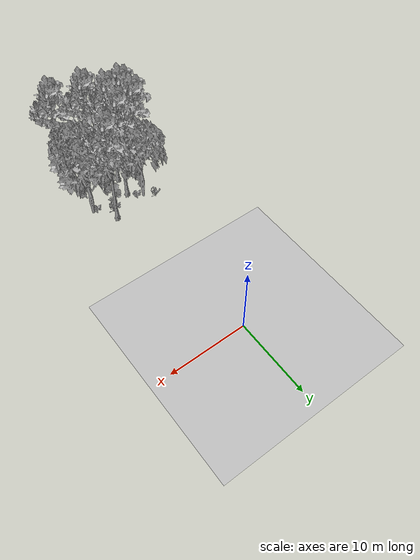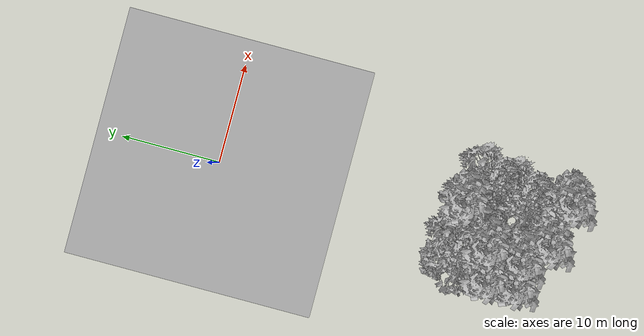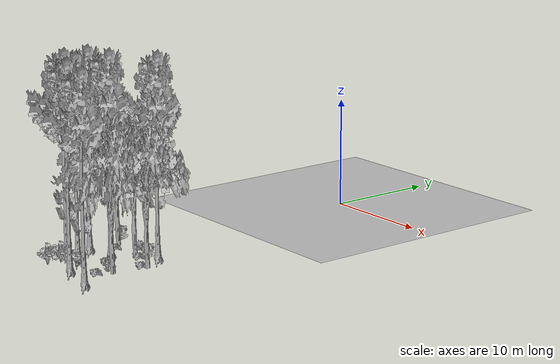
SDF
<sdf version="1.7">
 <world name="default">
  <model name="ground_plane">
   <static>1</static>
   <link name="link">
    <collision name="collision">
     <pose>-50 0 0 0 -0 0</pose>
     <geometry><plane><normal>0 0 1</normal><size>80 80</size></plane></geometry>
     <surface><contact><ode><min_depth>0.01</min_depth><max_vel>0</max_vel></ode></contact></surface>
    </collision>
    <visual name="grass">
     <cast_shadows>0</cast_shadows>
     <geometry>
      <mesh>
       <scale>0.46714285714285714 0.46714285714285714 0.1</scale>
       <uri>file://grass_plane/meshes/grass_plane.dae</uri>
      </mesh>
     </geometry>
    </visual>
   </link>
  </model>
  <model name="Tree 20">
   <static>1</static>
   <pose>2.6620295948769908 -22.221064124453882 0 1.57079 -0 0</pose>
   <link name="link">
    <collision name="collision">
     <geometry><mesh><scale>3.5 5 3.5</scale><uri>model://tree_9/meshes/tree_9.obj</uri></mesh></geometry>
    </collision>
    <visual name="visual">
     <geometry><mesh><scale>3.5 5 3.5</scale><uri>model://tree_9/meshes/tree_9.obj</uri></mesh></geometry>
    </visual>
   </link>
  </model>
  <model name="Tree 36">
   <static>1</static>
   <pose>4.64731560089762 -24.640429247862706 0 1.57079 -0 0</pose>
   <link name="link">
    <collision name="collision">
     <geometry><mesh><scale>3.5 5 3.5</scale><uri>model://tree_2/meshes/tree_2.obj</uri></mesh></geometry>
    </collision>
    <visual name="visual">
     <geometry><mesh><scale>3.5 5 3.5</scale><uri>model://tree_2/meshes/tree_2.obj</uri></mesh></geometry>
    </visual>
   </link>
  </model>
  <model name="Tree 73">
   <static>1</static>
   <pose>1.7062243221032745 -23.93220791918548 0 1.57079 -0 0</pose>
   <link name="link">
    <collision name="collision">
     <geometry><mesh><scale>3.5 5 3.5</scale><uri>model://tree_2/meshes/tree_2.obj</uri></mesh></geometry>
    </collision>
    <visual name="visual">
     <geometry><mesh><scale>3.5 5 3.5</scale><uri>model://tree_2/meshes/tree_2.obj</uri></mesh></geometry>
    </visual>
   </link>
  </model>
  <model name="Tree 190">
   <static>1</static>
   <pose>-3.0439718342376523 -25.429002359164386 0 1.57079 -0 0</pose>
   <link name="link">
    <collision name="collision">
     <geometry><mesh><scale>3.5 5 3.5</scale><uri>model://tree_9/meshes/tree_9.obj</uri></mesh></geometry>
    </collision>
    <visual name="visual">
     <geometry><mesh><scale>3.5 5 3.5</scale><uri>model://tree_9/meshes/tree_9.obj</uri></mesh></geometry>
    </visual>
   </link>
  </model>
  <model name="Tree 215">
   <static>1</static>
   <pose>1.0433557126138453 -29.790601047620875 0 1.57079 -0 0</pose>
   <link name="link">
    <collision name="collision">
     <geometry><mesh><scale>3.5 5 3.5</scale><uri>model://tree_9/meshes/tree_9.obj</uri></mesh></geometry>
    </collision>
    <visual name="visual">
     <geometry><mesh><scale>3.5 5 3.5</scale><uri>model://tree_9/meshes/tree_9.obj</uri></mesh></geometry>
    </visual>
   </link>
  </model>
  <model name="Tree 273">
   <static>1</static>
   <pose>-0.9732011836429706 -27.818195737126096 0 1.57079 -0 0</pose>
   <link name="link">
    <collision name="collision">
     <geometry><mesh><scale>3.5 5 3.5</scale><uri>model://tree_9/meshes/tree_9.obj</uri></mesh></geometry>
    </collision>
    <visual name="visual">
     <geometry><mesh><scale>3.5 5 3.5</scale><uri>model://tree_9/meshes/tree_9.obj</uri></mesh></geometry>
    </visual>
   </link>
  </model>
  <model name="Tree 447">
   <static>1</static>
   <pose>-2.1076141323567086 -23.21496573805378 0 1.57079 -0 0</pose>
   <link name="link">
    <collision name="collision">
     <geometry><mesh><scale>3.5 5 3.5</scale><uri>model://tree_2/meshes/tree_2.obj</uri></mesh></geometry>
    </collision>
    <visual name="visual">
     <geometry><mesh><scale>3.5 5 3.5</scale><uri>model://tree_2/meshes/tree_2.obj</uri></mesh></geometry>
    </visual>
   </link>
  </model>
  <model name="Tree 508">
   <static>1</static>
   <pose>-2.9206897326764363 -27.762084159199745 0 1.57079 -0 0</pose>
   <link name="link">
    <collision name="collision">
     <geometry><mesh><scale>3.5 5 3.5</scale><uri>model://tree_9/meshes/tree_9.obj</uri></mesh></geometry>
    </collision>
    <visual name="visual">
     <geometry><mesh><scale>3.5 5 3.5</scale><uri>model://tree_9/meshes/tree_9.obj</uri></mesh></geometry>
    </visual>
   </link>
  </model>
  <model name="Tree 554">
   <static>1</static>
   <pose>4.800050625045515 -30.676823136531794 0 1.57079 -0 0</pose>
   <link name="link">
    <collision name="collision">
     <geometry><mesh><scale>3.5 5 3.5</scale><uri>model://tree_9/meshes/tree_9.obj</uri></mesh></geometry>
    </collision>
    <visual name="visual">
     <geometry><mesh><scale>3.5 5 3.5</scale><uri>model://tree_9/meshes/tree_9.obj</uri></mesh></geometry>
    </visual>
   </link>
  </model>
  <model name="Tree 621">
   <static>1</static>
   <pose>4.151955149675089 -27.67862545013771 0 1.57079 -0 0</pose>
   <link name="link">
    <collision name="collision">
     <geometry><mesh><scale>3.5 5 3.5</scale><uri>model://tree_2/meshes/tree_2.obj</uri></mesh></geometry>
    </collision>
    <visual name="visual">
     <geometry><mesh><scale>3.5 5 3.5</scale><uri>model://tree_2/meshes/tree_2.obj</uri></mesh></geometry>
    </visual>
   </link>
  </model>
  <model name="Tree 624">
   <static>1</static>
   <pose>-0.5266809448080991 -24.874921229129523 0 1.57079 -0 0</pose>
   <link name="link">
    <collision name="collision">
     <geometry><mesh><scale>3.5 5 3.5</scale><uri>model://tree_9/meshes/tree_9.obj</uri></mesh></geometry>
    </collision>
    <visual name="visual">
     <geometry><mesh><scale>3.5 5 3.5</scale><uri>model://tree_9/meshes/tree_9.obj</uri></mesh></geometry>
    </visual>
   </link>
  </model>
  <model name="Bush 78">
   <static>1</static>
   <pose>2.3178479126604614 -23.51369277075296 0 1.57079 -0 0</pose>
   <link name="link">
    <collision name="collision">
     <geometry><mesh><scale>2 2 2</scale><uri>model://bush_5/meshes/bush_5.obj</uri></mesh></geometry>
     <surface><contact><collide_without_contact>false</collide_without_contact></contact></surface>
    </collision>
    <visual name="visual">
     <geometry><mesh><scale>2 2 2</scale><uri>model://bush_5/meshes/bush_5.obj</uri></mesh></geometry>
    </visual>
   </link>
  </model>
  <model name="Bush 280">
   <static>1</static>
   <pose>-0.8940676986772829 -29.534201266304294 0 1.57079 -0 0</pose>
   <link name="link">
    <collision name="collision">
     <geometry><mesh><scale>2 2 2</scale><uri>model://bush_1/meshes/bush_1.obj</uri></mesh></geometry>
     <surface><contact><collide_without_contact>false</collide_without_contact></contact></surface>
    </collision>
    <visual name="visual">
     <geometry><mesh><scale>2 2 2</scale><uri>model://bush_1/meshes/bush_1.obj</uri></mesh></geometry>
    </visual>
   </link>
  </model>
  <model name="Bush 328">
   <static>1</static>
   <pose>4.03919002325037 -24.854481996539242 0 1.57079 -0 0</pose>
   <link name="link">
    <collision name="collision">
     <geometry><mesh><scale>2 2 2</scale><uri>model://bush_2/meshes/bush_2.obj</uri></mesh></geometry>
     <surface><contact><collide_without_contact>false</collide_without_contact></contact></surface>
    </collision>
    <visual name="visual">
     <geometry><mesh><scale>2 2 2</scale><uri>model://bush_2/meshes/bush_2.obj</uri></mesh></geometry>
    </visual>
   </link>
  </model>
  <model name="Bush 372">
   <static>1</static>
   <pose>1.4267573242228124 -26.613172520094608 0 1.57079 -0 0</pose>
   <link name="link">
    <collision name="collision">
     <geometry><mesh><scale>2 2 2</scale><uri>model://bush_2/meshes/bush_2.obj</uri></mesh></geometry>
     <surface><contact><collide_without_contact>false</collide_without_contact></contact></surface>
    </collision>
    <visual name="visual">
     <geometry><mesh><scale>2 2 2</scale><uri>model://bush_2/meshes/bush_2.obj</uri></mesh></geometry>
    </visual>
   </link>
  </model>
  <model name="Bush 394">
   <static>1</static>
   <pose>3.3402742520728452 -28.772086990327395 0 1.57079 -0 0</pose>
   <link name="link">
    <collision name="collision">
     <geometry><mesh><scale>2 2 2</scale><uri>model://bush_2/meshes/bush_2.obj</uri></mesh></geometry>
     <surface><contact><collide_without_contact>false</collide_without_contact></contact></surface>
    </collision>
    <visual name="visual">
     <geometry><mesh><scale>2 2 2</scale><uri>model://bush_2/meshes/bush_2.obj</uri></mesh></geometry>
    </visual>
   </link>
  </model>
  <model name="Bush 398">
   <static>1</static>
   <pose>1.8280597778139338 -23.705774019040025 0 1.57079 -0 0</pose>
   <link name="link">
    <collision name="collision">
     <geometry><mesh><scale>2 2 2</scale><uri>model://bush_2/meshes/bush_2.obj</uri></mesh></geometry>
     <surface><contact><collide_without_contact>false</collide_without_contact></contact></surface>
    </collision>
    <visual name="visual">
     <geometry><mesh><scale>2 2 2</scale><uri>model://bush_2/meshes/bush_2.obj</uri></mesh></geometry>
    </visual>
   </link>
  </model>
  <model name="Bush 415">
   <static>1</static>
   <pose>-1.11478582228375 -30.67341191388212 0 1.57079 -0 0</pose>
   <link name="link">
    <collision name="collision">
     <geometry><mesh><scale>2 2 2</scale><uri>model://bush_1/meshes/bush_1.obj</uri></mesh></geometry>
     <surface><contact><collide_without_contact>false</collide_without_contact></contact></surface>
    </collision>
    <visual name="visual">
     <geometry><mesh><scale>2 2 2</scale><uri>model://bush_1/meshes/bush_1.obj</uri></mesh></geometry>
    </visual>
   </link>
  </model>
  <model name="Bush 505">
   <static>1</static>
   <pose>-1.4568132788071324 -23.90673567990726 0 1.57079 -0 0</pose>
   <link name="link">
    <collision name="collision">
     <geometry><mesh><scale>2 2 2</scale><uri>model://bush_2/meshes/bush_2.obj</uri></mesh></geometry>
     <surface><contact><collide_without_contact>false</collide_without_contact></contact></surface>
    </collision>
    <visual name="visual">
     <geometry><mesh><scale>2 2 2</scale><uri>model://bush_2/meshes/bush_2.obj</uri></mesh></geometry>
    </visual>
   </link>
  </model>
  <model name="Bush 534">
   <static>1</static>
   <pose>3.4816072860873604 -27.69385295227636 0 1.57079 -0 0</pose>
   <link name="link">
    <collision name="collision">
     <geometry><mesh><scale>2 2 2</scale><uri>model://bush_4/meshes/bush_4.obj</uri></mesh></geometry>
     <surface><contact><collide_without_contact>false</collide_without_contact></contact></surface>
    </collision>
    <visual name="visual">
     <geometry><mesh><scale>2 2 2</scale><uri>model://bush_4/meshes/bush_4.obj</uri></mesh></geometry>
    </visual>
   </link>
  </model>
  <model name="Bush 546">
   <static>1</static>
   <pose>2.534812183823888 -23.25179247048404 0 1.57079 -0 0</pose>
   <link name="link">
    <collision name="collision">
     <geometry><mesh><scale>2 2 2</scale><uri>model://bush_4/meshes/bush_4.obj</uri></mesh></geometry>
     <surface><contact><collide_without_contact>false</collide_without_contact></contact></surface>
    </collision>
    <visual name="visual">
     <geometry><mesh><scale>2 2 2</scale><uri>model://bush_4/meshes/bush_4.obj</uri></mesh></geometry>
    </visual>
   </link>
  </model>
  <model name="Bush 551">
   <static>1</static>
   <pose>0.8718552119919707 -29.024001460712256 0 1.57079 -0 0</pose>
   <link name="link">
    <collision name="collision">
     <geometry><mesh><scale>2 2 2</scale><uri>model://bush_0/meshes/bush_0.obj</uri></mesh></geometry>
     <surface><contact><collide_without_contact>false</collide_without_contact></contact></surface>
    </collision>
    <visual name="visual">
     <geometry><mesh><scale>2 2 2</scale><uri>model://bush_0/meshes/bush_0.obj</uri></mesh></geometry>
    </visual>
   </link>
  </model>
  <model name="Bush 611">
   <static>1</static>
   <pose>-3.2113836458322567 -22.2596602901556 0 1.57079 -0 0</pose>
   <link name="link">
    <collision name="collision">
     <geometry><mesh><scale>2 2 2</scale><uri>model://bush_4/meshes/bush_4.obj</uri></mesh></geometry>
     <surface><contact><collide_without_contact>false</collide_without_contact></contact></surface>
    </collision>
    <visual name="visual">
     <geometry><mesh><scale>2 2 2</scale><uri>model://bush_4/meshes/bush_4.obj</uri></mesh></geometry>
    </visual>
   </link>
  </model>
 </world>
</sdf>
